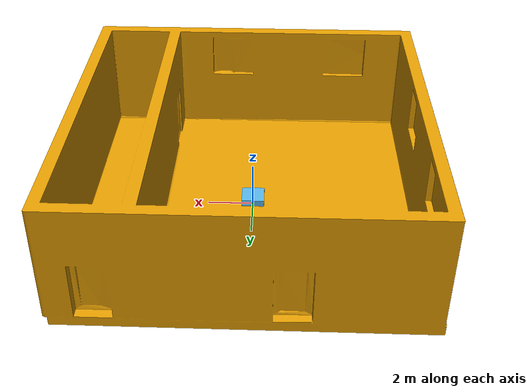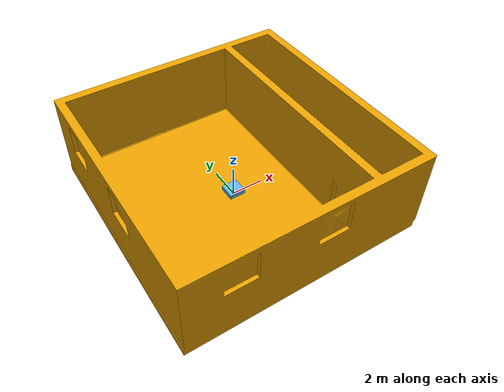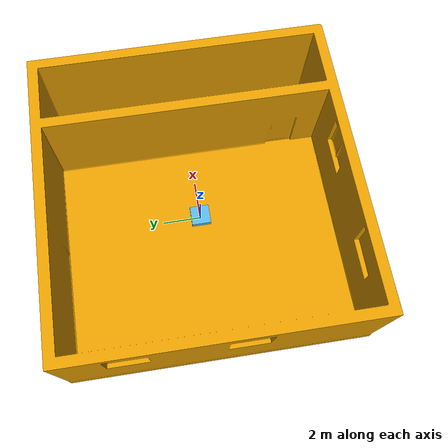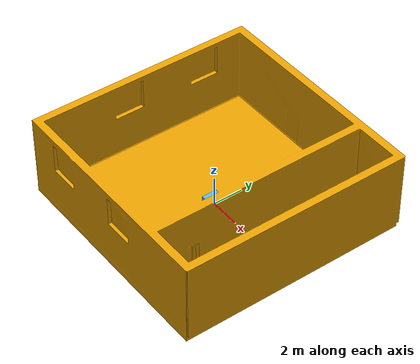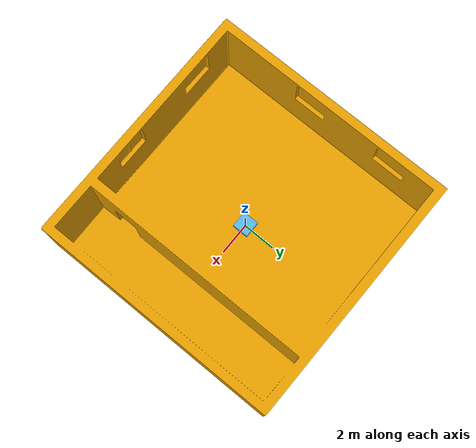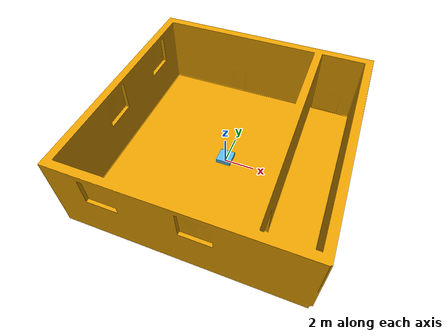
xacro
<?xml version="1.0"?>
<robot xmlns:xacro="http://ros.org/wiki/xacro" name="shop_environment">

        <link name="shop_layout">
            <visual>
                <geometry>
                    <mesh filename="package://iai_avatar_description/map/meshes/shop.obj"/>
                </geometry>
            </visual>
        </link>

        <link name="NikonStand">
            <visual>
                <geometry>
                    <mesh filename="package://iai_avatar_description/map/meshes/stand.obj"/>
                </geometry>
            </visual>
        </link>

        <link name="NikonCamera">
            <visual>
                <geometry>
                    <box size="0.25 0.25 0.25"/>
                </geometry>
            </visual>
        </link>

        <link name="SonyStand">
            <visual>
                <geometry>
                    <mesh filename="package://iai_avatar_description/map/meshes/stand.obj"/>
                </geometry>
            </visual>
        </link>

        <link name="SonyCamera">
            <visual>
                <geometry>
                    <box size="0.25 0.25 0.25"/>
                </geometry>
            </visual>
        </link>

        <link name="CanonStand">
            <visual>
                <geometry>
                    <mesh filename="package://iai_avatar_description/map/meshes/stand.obj"/>
                </geometry>
            </visual>
        </link>

         <link name="CanonCamera">
            <visual>
                <geometry>
                    <box size="0.25 0.25 0.25"/>
                </geometry>
            </visual>
        </link>

        <link name="ServiceCounter">
            <visual>
                <geometry>
                    <mesh filename="package://iai_avatar_description/map/meshes/stand.obj"/>
                </geometry>
            </visual>
        </link>

           <joint name="ServiceCounter" type="fixed">
    <parent link="shop_layout"/>
    <child link="ServiceCounter"/>
  </joint>

        <joint name="SonyStand" type="fixed">
    <parent link="shop_layout"/>
    <child link="SonyStand"/>
  </joint>

        <joint name="NikonStand" type="fixed">
    <parent link="shop_layout"/>
    <child link="NikonStand"/>
  </joint>

  <joint name="shop_layout_to_CanonStand" type="fixed">
    <parent link="shop_layout"/>
    <child link="CanonStand"/>
  </joint>

  <joint name="SonyCamera" type="fixed">
    <parent link="SonyStand"/>
    <child link="SonyCamera"/>
  </joint>

      <joint name="NikonCamera" type="fixed">
    <parent link="NikonStand"/>
    <child link="NikonCamera"/>
  </joint>

        <joint name="CanonCamera" type="fixed">
    <parent link="CanonStand"/>
    <child link="CanonCamera"/>
  </joint>

</robot>
